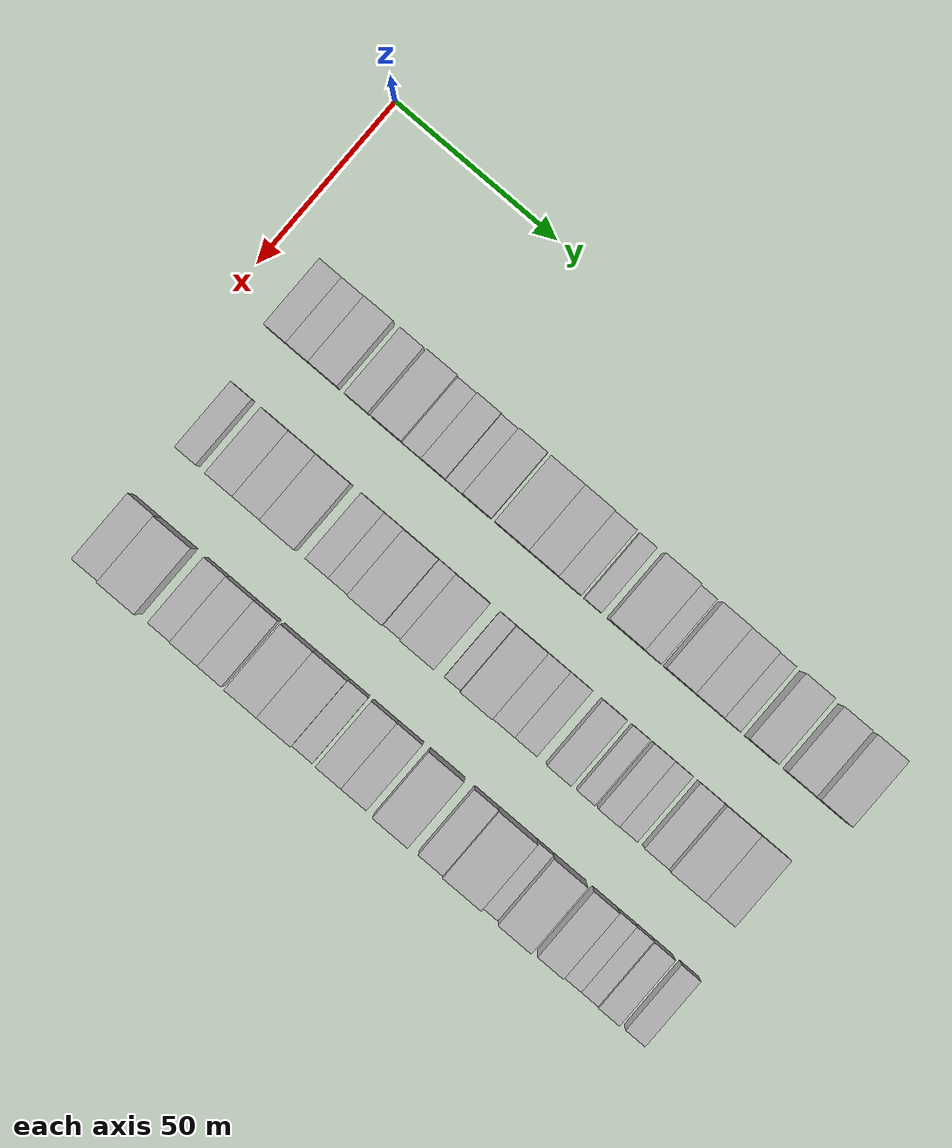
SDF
<sdf version="1.6">
 <world name="default">
  <model name="building_42">
   <static>1</static>
   <pose>50.0000 14.8353 0 0.000000 0.000000 0.000000</pose>
   <link name="link">
    <pose>0 0 7.50 0 0 0</pose>
    <collision name="collision"><geometry><box><size>20.0000 6.7428 15.0000</size></box></geometry></collision>
    <visual name="visual">
     <cast_shadows>0</cast_shadows>
     <geometry><box><size>20.0000 6.7428 15.0000</size></box></geometry>
     <material>
      <script>
       <uri>model://HANNAS_wall/materials/scripts</uri>
       <uri>model://HANNAS_wall/materials/textures</uri>
       <name>vrc/HANNAS_wall</name>
      </script>
     </material>
    </visual>
   </link>
  </model>
  <model name="building_43">
   <static>1</static>
   <pose>50.0000 21.6763 0 0.000000 0.000000 0.000000</pose>
   <link name="link">
    <pose>0 0 7.50 0 0 0</pose>
    <collision name="collision"><geometry><box><size>20.0000 6.9393 15.0000</size></box></geometry></collision>
    <visual name="visual">
     <cast_shadows>0</cast_shadows>
     <geometry><box><size>20.0000 6.9393 15.0000</size></box></geometry>
     <material>
      <script>
       <uri>model://HANNAS_wall/materials/scripts</uri>
       <uri>model://HANNAS_wall/materials/textures</uri>
       <name>vrc/HANNAS_wall</name>
      </script>
     </material>
    </visual>
   </link>
  </model>
  <model name="building_44">
   <static>1</static>
   <pose>50.0000 29.5664 0 0.000000 0.000000 0.000000</pose>
   <link name="link">
    <pose>0 0 9.00 0 0 0</pose>
    <collision name="collision"><geometry><box><size>20.0000 8.8408 18.0000</size></box></geometry></collision>
    <visual name="visual">
     <cast_shadows>0</cast_shadows>
     <geometry><box><size>20.0000 8.8408 18.0000</size></box></geometry>
     <material>
      <script>
       <uri>model://HANNAS_wall/materials/scripts</uri>
       <uri>model://HANNAS_wall/materials/textures</uri>
       <name>vrc/HANNAS_wall</name>
      </script>
     </material>
    </visual>
   </link>
  </model>
  <model name="building_45">
   <static>1</static>
   <pose>50.0000 39.5850 0 0.000000 0.000000 0.000000</pose>
   <link name="link">
    <pose>0 0 7.50 0 0 0</pose>
    <collision name="collision"><geometry><box><size>20.0000 7.1965 15.0000</size></box></geometry></collision>
    <visual name="visual">
     <cast_shadows>0</cast_shadows>
     <geometry><box><size>20.0000 7.1965 15.0000</size></box></geometry>
     <material>
      <script>
       <uri>model://HANNAS_wall/materials/scripts</uri>
       <uri>model://HANNAS_wall/materials/textures</uri>
       <name>vrc/HANNAS_wall</name>
      </script>
     </material>
    </visual>
   </link>
  </model>
  <model name="building_46">
   <static>1</static>
   <pose>50.0000 48.8609 0 0.000000 0.000000 0.000000</pose>
   <link name="link">
    <pose>0 0 10.50 0 0 0</pose>
    <collision name="collision"><geometry><box><size>20.0000 9.3553 21.0000</size></box></geometry></collision>
    <visual name="visual">
     <cast_shadows>0</cast_shadows>
     <geometry><box><size>20.0000 9.3553 21.0000</size></box></geometry>
     <material>
      <script>
       <uri>model://HANNAS_wall/materials/scripts</uri>
       <uri>model://HANNAS_wall/materials/textures</uri>
       <name>vrc/HANNAS_wall</name>
      </script>
     </material>
    </visual>
   </link>
  </model>
  <model name="building_47">
   <static>1</static>
   <pose>50.0000 56.5176 0 0.000000 0.000000 0.000000</pose>
   <link name="link">
    <pose>0 0 6.00 0 0 0</pose>
    <collision name="collision"><geometry><box><size>20.0000 5.9580 12.0000</size></box></geometry></collision>
    <visual name="visual">
     <cast_shadows>0</cast_shadows>
     <geometry><box><size>20.0000 5.9580 12.0000</size></box></geometry>
     <material>
      <script>
       <uri>model://HANNAS_wall/materials/scripts</uri>
       <uri>model://HANNAS_wall/materials/textures</uri>
       <name>vrc/HANNAS_wall</name>
      </script>
     </material>
    </visual>
   </link>
  </model>
  <model name="building_48">
   <static>1</static>
   <pose>50.0000 63.1701 0 0.000000 0.000000 0.000000</pose>
   <link name="link">
    <pose>0 0 9.00 0 0 0</pose>
    <collision name="collision"><geometry><box><size>20.0000 7.3471 18.0000</size></box></geometry></collision>
    <visual name="visual">
     <cast_shadows>0</cast_shadows>
     <geometry><box><size>20.0000 7.3471 18.0000</size></box></geometry>
     <material>
      <script>
       <uri>model://HANNAS_wall/materials/scripts</uri>
       <uri>model://HANNAS_wall/materials/textures</uri>
       <name>vrc/HANNAS_wall</name>
      </script>
     </material>
    </visual>
   </link>
  </model>
  <model name="building_49">
   <static>1</static>
   <pose>50.0000 69.4991 0 0.000000 0.000000 0.000000</pose>
   <link name="link">
    <pose>0 0 6.00 0 0 0</pose>
    <collision name="collision"><geometry><box><size>20.0000 5.3110 12.0000</size></box></geometry></collision>
    <visual name="visual">
     <cast_shadows>0</cast_shadows>
     <geometry><box><size>20.0000 5.3110 12.0000</size></box></geometry>
     <material>
      <script>
       <uri>model://HANNAS_wall/materials/scripts</uri>
       <uri>model://HANNAS_wall/materials/textures</uri>
       <name>vrc/HANNAS_wall</name>
      </script>
     </material>
    </visual>
   </link>
  </model>
  <model name="building_50">
   <static>1</static>
   <pose>50.0000 76.5084 0 0.000000 0.000000 0.000000</pose>
   <link name="link">
    <pose>0 0 10.50 0 0 0</pose>
    <collision name="collision"><geometry><box><size>20.0000 8.7075 21.0000</size></box></geometry></collision>
    <visual name="visual">
     <cast_shadows>0</cast_shadows>
     <geometry><box><size>20.0000 8.7075 21.0000</size></box></geometry>
     <material>
      <script>
       <uri>model://HANNAS_wall/materials/scripts</uri>
       <uri>model://HANNAS_wall/materials/textures</uri>
       <name>vrc/HANNAS_wall</name>
      </script>
     </material>
    </visual>
   </link>
  </model>
  <model name="building_51">
   <static>1</static>
   <pose>50.0000 87.0687 0 0.000000 0.000000 0.000000</pose>
   <link name="link">
    <pose>0 0 10.50 0 0 0</pose>
    <collision name="collision"><geometry><box><size>20.0000 10.4131 21.0000</size></box></geometry></collision>
    <visual name="visual">
     <cast_shadows>0</cast_shadows>
     <geometry><box><size>20.0000 10.4131 21.0000</size></box></geometry>
     <material>
      <script>
       <uri>model://HANNAS_wall/materials/scripts</uri>
       <uri>model://HANNAS_wall/materials/textures</uri>
       <name>vrc/HANNAS_wall</name>
      </script>
     </material>
    </visual>
   </link>
  </model>
  <model name="building_52">
   <static>1</static>
   <pose>50.0000 96.8243 0 0.000000 0.000000 0.000000</pose>
   <link name="link">
    <pose>0 0 10.50 0 0 0</pose>
    <collision name="collision"><geometry><box><size>20.0000 9.0983 21.0000</size></box></geometry></collision>
    <visual name="visual">
     <cast_shadows>0</cast_shadows>
     <geometry><box><size>20.0000 9.0983 21.0000</size></box></geometry>
     <material>
      <script>
       <uri>model://HANNAS_wall/materials/scripts</uri>
       <uri>model://HANNAS_wall/materials/textures</uri>
       <name>vrc/HANNAS_wall</name>
      </script>
     </material>
    </visual>
   </link>
  </model>
  <model name="building_53">
   <static>1</static>
   <pose>50.0000 104.8211 0 0.000000 0.000000 0.000000</pose>
   <link name="link">
    <pose>0 0 7.50 0 0 0</pose>
    <collision name="collision"><geometry><box><size>20.0000 6.8952 15.0000</size></box></geometry></collision>
    <visual name="visual">
     <cast_shadows>0</cast_shadows>
     <geometry><box><size>20.0000 6.8952 15.0000</size></box></geometry>
     <material>
      <script>
       <uri>model://HANNAS_wall/materials/scripts</uri>
       <uri>model://HANNAS_wall/materials/textures</uri>
       <name>vrc/HANNAS_wall</name>
      </script>
     </material>
    </visual>
   </link>
  </model>
  <model name="building_54">
   <static>1</static>
   <pose>50.0000 111.8903 0 0.000000 0.000000 0.000000</pose>
   <link name="link">
    <pose>0 0 6.00 0 0 0</pose>
    <collision name="collision"><geometry><box><size>20.0000 5.2433 12.0000</size></box></geometry></collision>
    <visual name="visual">
     <cast_shadows>0</cast_shadows>
     <geometry><box><size>20.0000 5.2433 12.0000</size></box></geometry>
     <material>
      <script>
       <uri>model://HANNAS_wall/materials/scripts</uri>
       <uri>model://HANNAS_wall/materials/textures</uri>
       <name>vrc/HANNAS_wall</name>
      </script>
     </material>
    </visual>
   </link>
  </model>
  <model name="building_55">
   <static>1</static>
   <pose>50.0000 121.9380 0 0.000000 0.000000 0.000000</pose>
   <link name="link">
    <pose>0 0 12.00 0 0 0</pose>
    <collision name="collision"><geometry><box><size>20.0000 10.8521 24.0000</size></box></geometry></collision>
    <visual name="visual">
     <cast_shadows>0</cast_shadows>
     <geometry><box><size>20.0000 10.8521 24.0000</size></box></geometry>
     <material>
      <script>
       <uri>model://HANNAS_wall/materials/scripts</uri>
       <uri>model://HANNAS_wall/materials/textures</uri>
       <name>vrc/HANNAS_wall</name>
      </script>
     </material>
    </visual>
   </link>
  </model>
  <model name="building_56">
   <static>1</static>
   <pose>50.0000 130.1348 0 0.000000 0.000000 0.000000</pose>
   <link name="link">
    <pose>0 0 6.00 0 0 0</pose>
    <collision name="collision"><geometry><box><size>20.0000 5.5414 12.0000</size></box></geometry></collision>
    <visual name="visual">
     <cast_shadows>0</cast_shadows>
     <geometry><box><size>20.0000 5.5414 12.0000</size></box></geometry>
     <material>
      <script>
       <uri>model://HANNAS_wall/materials/scripts</uri>
       <uri>model://HANNAS_wall/materials/textures</uri>
       <name>vrc/HANNAS_wall</name>
      </script>
     </material>
    </visual>
   </link>
  </model>
  <model name="building_57">
   <static>1</static>
   <pose>50.0000 138.3855 0 0.000000 0.000000 0.000000</pose>
   <link name="link">
    <pose>0 0 10.50 0 0 0</pose>
    <collision name="collision"><geometry><box><size>20.0000 8.9601 21.0000</size></box></geometry></collision>
    <visual name="visual">
     <cast_shadows>0</cast_shadows>
     <geometry><box><size>20.0000 8.9601 21.0000</size></box></geometry>
     <material>
      <script>
       <uri>model://HANNAS_wall/materials/scripts</uri>
       <uri>model://HANNAS_wall/materials/textures</uri>
       <name>vrc/HANNAS_wall</name>
      </script>
     </material>
    </visual>
   </link>
  </model>
  <model name="building_58">
   <static>1</static>
   <pose>50.0000 147.2667 0 0.000000 0.000000 0.000000</pose>
   <link name="link">
    <pose>0 0 9.00 0 0 0</pose>
    <collision name="collision"><geometry><box><size>20.0000 8.8022 18.0000</size></box></geometry></collision>
    <visual name="visual">
     <cast_shadows>0</cast_shadows>
     <geometry><box><size>20.0000 8.8022 18.0000</size></box></geometry>
     <material>
      <script>
       <uri>model://HANNAS_wall/materials/scripts</uri>
       <uri>model://HANNAS_wall/materials/textures</uri>
       <name>vrc/HANNAS_wall</name>
      </script>
     </material>
    </visual>
   </link>
  </model>
  <model name="building_59">
   <static>1</static>
   <pose>50.0000 154.3495 0 0.000000 0.000000 0.000000</pose>
   <link name="link">
    <pose>0 0 6.00 0 0 0</pose>
    <collision name="collision"><geometry><box><size>20.0000 5.3634 12.0000</size></box></geometry></collision>
    <visual name="visual">
     <cast_shadows>0</cast_shadows>
     <geometry><box><size>20.0000 5.3634 12.0000</size></box></geometry>
     <material>
      <script>
       <uri>model://HANNAS_wall/materials/scripts</uri>
       <uri>model://HANNAS_wall/materials/textures</uri>
       <name>vrc/HANNAS_wall</name>
      </script>
     </material>
    </visual>
   </link>
  </model>
  <model name="building_60">
   <static>1</static>
   <pose>50.0000 163.4841 0 0.000000 0.000000 0.000000</pose>
   <link name="link">
    <pose>0 0 10.50 0 0 0</pose>
    <collision name="collision"><geometry><box><size>20.0000 8.9057 21.0000</size></box></geometry></collision>
    <visual name="visual">
     <cast_shadows>0</cast_shadows>
     <geometry><box><size>20.0000 8.9057 21.0000</size></box></geometry>
     <material>
      <script>
       <uri>model://HANNAS_wall/materials/scripts</uri>
       <uri>model://HANNAS_wall/materials/textures</uri>
       <name>vrc/HANNAS_wall</name>
      </script>
     </material>
    </visual>
   </link>
  </model>
  <model name="building_61">
   <static>1</static>
   <pose>50.0000 175.3051 0 0.000000 0.000000 0.000000</pose>
   <link name="link">
    <pose>0 0 9.00 0 0 0</pose>
    <collision name="collision"><geometry><box><size>20.0000 8.7363 18.0000</size></box></geometry></collision>
    <visual name="visual">
     <cast_shadows>0</cast_shadows>
     <geometry><box><size>20.0000 8.7363 18.0000</size></box></geometry>
     <material>
      <script>
       <uri>model://HANNAS_wall/materials/scripts</uri>
       <uri>model://HANNAS_wall/materials/textures</uri>
       <name>vrc/HANNAS_wall</name>
      </script>
     </material>
    </visual>
   </link>
  </model>
  <model name="building_62">
   <static>1</static>
   <pose>50.0000 185.4609 0 0.000000 0.000000 0.000000</pose>
   <link name="link">
    <pose>0 0 10.50 0 0 0</pose>
    <collision name="collision"><geometry><box><size>20.0000 9.5754 21.0000</size></box></geometry></collision>
    <visual name="visual">
     <cast_shadows>0</cast_shadows>
     <geometry><box><size>20.0000 9.5754 21.0000</size></box></geometry>
     <material>
      <script>
       <uri>model://HANNAS_wall/materials/scripts</uri>
       <uri>model://HANNAS_wall/materials/textures</uri>
       <name>vrc/HANNAS_wall</name>
      </script>
     </material>
    </visual>
   </link>
  </model>
  <model name="building_122">
   <static>1</static>
   <pose>85.0000 17.5130 0 0.000000 0.000000 0.000000</pose>
   <link name="link">
    <pose>0 0 7.50 0 0 0</pose>
    <collision name="collision"><geometry><box><size>20.0000 6.4520 15.0000</size></box></geometry></collision>
    <visual name="visual">
     <cast_shadows>0</cast_shadows>
     <geometry><box><size>20.0000 6.4520 15.0000</size></box></geometry>
     <material>
      <script>
       <uri>model://HANNAS_wall/materials/scripts</uri>
       <uri>model://HANNAS_wall/materials/textures</uri>
       <name>vrc/HANNAS_wall</name>
      </script>
     </material>
    </visual>
   </link>
  </model>
  <model name="building_123">
   <static>1</static>
   <pose>85.0000 27.9033 0 0.000000 0.000000 0.000000</pose>
   <link name="link">
    <pose>0 0 9.00 0 0 0</pose>
    <collision name="collision"><geometry><box><size>20.0000 8.3287 18.0000</size></box></geometry></collision>
    <visual name="visual">
     <cast_shadows>0</cast_shadows>
     <geometry><box><size>20.0000 8.3287 18.0000</size></box></geometry>
     <material>
      <script>
       <uri>model://HANNAS_wall/materials/scripts</uri>
       <uri>model://HANNAS_wall/materials/textures</uri>
       <name>vrc/HANNAS_wall</name>
      </script>
     </material>
    </visual>
   </link>
  </model>
  <model name="building_124">
   <static>1</static>
   <pose>85.0000 36.3049 0 0.000000 0.000000 0.000000</pose>
   <link name="link">
    <pose>0 0 9.00 0 0 0</pose>
    <collision name="collision"><geometry><box><size>20.0000 8.4744 18.0000</size></box></geometry></collision>
    <visual name="visual">
     <cast_shadows>0</cast_shadows>
     <geometry><box><size>20.0000 8.4744 18.0000</size></box></geometry>
     <material>
      <script>
       <uri>model://HANNAS_wall/materials/scripts</uri>
       <uri>model://HANNAS_wall/materials/textures</uri>
       <name>vrc/HANNAS_wall</name>
      </script>
     </material>
    </visual>
   </link>
  </model>
  <model name="building_125">
   <static>1</static>
   <pose>85.0000 45.7857 0 0.000000 0.000000 0.000000</pose>
   <link name="link">
    <pose>0 0 10.50 0 0 0</pose>
    <collision name="collision"><geometry><box><size>20.0000 10.4872 21.0000</size></box></geometry></collision>
    <visual name="visual">
     <cast_shadows>0</cast_shadows>
     <geometry><box><size>20.0000 10.4872 21.0000</size></box></geometry>
     <material>
      <script>
       <uri>model://HANNAS_wall/materials/scripts</uri>
       <uri>model://HANNAS_wall/materials/textures</uri>
       <name>vrc/HANNAS_wall</name>
      </script>
     </material>
    </visual>
   </link>
  </model>
  <model name="building_126">
   <static>1</static>
   <pose>85.0000 57.5742 0 0.000000 0.000000 0.000000</pose>
   <link name="link">
    <pose>0 0 7.50 0 0 0</pose>
    <collision name="collision"><geometry><box><size>20.0000 7.0897 15.0000</size></box></geometry></collision>
    <visual name="visual">
     <cast_shadows>0</cast_shadows>
     <geometry><box><size>20.0000 7.0897 15.0000</size></box></geometry>
     <material>
      <script>
       <uri>model://HANNAS_wall/materials/scripts</uri>
       <uri>model://HANNAS_wall/materials/textures</uri>
       <name>vrc/HANNAS_wall</name>
      </script>
     </material>
    </visual>
   </link>
  </model>
  <model name="building_127">
   <static>1</static>
   <pose>85.0000 64.1379 0 0.000000 0.000000 0.000000</pose>
   <link name="link">
    <pose>0 0 7.50 0 0 0</pose>
    <collision name="collision"><geometry><box><size>20.0000 6.0377 15.0000</size></box></geometry></collision>
    <visual name="visual">
     <cast_shadows>0</cast_shadows>
     <geometry><box><size>20.0000 6.0377 15.0000</size></box></geometry>
     <material>
      <script>
       <uri>model://HANNAS_wall/materials/scripts</uri>
       <uri>model://HANNAS_wall/materials/textures</uri>
       <name>vrc/HANNAS_wall</name>
      </script>
     </material>
    </visual>
   </link>
  </model>
  <model name="building_128">
   <static>1</static>
   <pose>85.0000 72.4578 0 0.000000 0.000000 0.000000</pose>
   <link name="link">
    <pose>0 0 12.00 0 0 0</pose>
    <collision name="collision"><geometry><box><size>20.0000 10.6020 24.0000</size></box></geometry></collision>
    <visual name="visual">
     <cast_shadows>0</cast_shadows>
     <geometry><box><size>20.0000 10.6020 24.0000</size></box></geometry>
     <material>
      <script>
       <uri>model://HANNAS_wall/materials/scripts</uri>
       <uri>model://HANNAS_wall/materials/textures</uri>
       <name>vrc/HANNAS_wall</name>
      </script>
     </material>
    </visual>
   </link>
  </model>
  <model name="building_129">
   <static>1</static>
   <pose>85.0000 80.4064 0 0.000000 0.000000 0.000000</pose>
   <link name="link">
    <pose>0 0 6.00 0 0 0</pose>
    <collision name="collision"><geometry><box><size>20.0000 5.2952 12.0000</size></box></geometry></collision>
    <visual name="visual">
     <cast_shadows>0</cast_shadows>
     <geometry><box><size>20.0000 5.2952 12.0000</size></box></geometry>
     <material>
      <script>
       <uri>model://HANNAS_wall/materials/scripts</uri>
       <uri>model://HANNAS_wall/materials/textures</uri>
       <name>vrc/HANNAS_wall</name>
      </script>
     </material>
    </visual>
   </link>
  </model>
  <model name="building_130">
   <static>1</static>
   <pose>85.0000 88.2303 0 0.000000 0.000000 0.000000</pose>
   <link name="link">
    <pose>0 0 12.00 0 0 0</pose>
    <collision name="collision"><geometry><box><size>20.0000 10.3525 24.0000</size></box></geometry></collision>
    <visual name="visual">
     <cast_shadows>0</cast_shadows>
     <geometry><box><size>20.0000 10.3525 24.0000</size></box></geometry>
     <material>
      <script>
       <uri>model://HANNAS_wall/materials/scripts</uri>
       <uri>model://HANNAS_wall/materials/textures</uri>
       <name>vrc/HANNAS_wall</name>
      </script>
     </material>
    </visual>
   </link>
  </model>
  <model name="building_131">
   <static>1</static>
   <pose>85.0000 98.8623 0 0.000000 0.000000 0.000000</pose>
   <link name="link">
    <pose>0 0 6.00 0 0 0</pose>
    <collision name="collision"><geometry><box><size>20.0000 4.9117 12.0000</size></box></geometry></collision>
    <visual name="visual">
     <cast_shadows>0</cast_shadows>
     <geometry><box><size>20.0000 4.9117 12.0000</size></box></geometry>
     <material>
      <script>
       <uri>model://HANNAS_wall/materials/scripts</uri>
       <uri>model://HANNAS_wall/materials/textures</uri>
       <name>vrc/HANNAS_wall</name>
      </script>
     </material>
    </visual>
   </link>
  </model>
  <model name="building_132">
   <static>1</static>
   <pose>85.0000 106.1662 0 0.000000 0.000000 0.000000</pose>
   <link name="link">
    <pose>0 0 12.00 0 0 0</pose>
    <collision name="collision"><geometry><box><size>20.0000 9.6960 24.0000</size></box></geometry></collision>
    <visual name="visual">
     <cast_shadows>0</cast_shadows>
     <geometry><box><size>20.0000 9.6960 24.0000</size></box></geometry>
     <material>
      <script>
       <uri>model://HANNAS_wall/materials/scripts</uri>
       <uri>model://HANNAS_wall/materials/textures</uri>
       <name>vrc/HANNAS_wall</name>
      </script>
     </material>
    </visual>
   </link>
  </model>
  <model name="building_133">
   <static>1</static>
   <pose>85.0000 114.4758 0 0.000000 0.000000 0.000000</pose>
   <link name="link">
    <pose>0 0 7.50 0 0 0</pose>
    <collision name="collision"><geometry><box><size>20.0000 6.9232 15.0000</size></box></geometry></collision>
    <visual name="visual">
     <cast_shadows>0</cast_shadows>
     <geometry><box><size>20.0000 6.9232 15.0000</size></box></geometry>
     <material>
      <script>
       <uri>model://HANNAS_wall/materials/scripts</uri>
       <uri>model://HANNAS_wall/materials/textures</uri>
       <name>vrc/HANNAS_wall</name>
      </script>
     </material>
    </visual>
   </link>
  </model>
  <model name="building_134">
   <static>1</static>
   <pose>85.0000 121.2999 0 0.000000 0.000000 0.000000</pose>
   <link name="link">
    <pose>0 0 7.50 0 0 0</pose>
    <collision name="collision"><geometry><box><size>20.0000 6.7249 15.0000</size></box></geometry></collision>
    <visual name="visual">
     <cast_shadows>0</cast_shadows>
     <geometry><box><size>20.0000 6.7249 15.0000</size></box></geometry>
     <material>
      <script>
       <uri>model://HANNAS_wall/materials/scripts</uri>
       <uri>model://HANNAS_wall/materials/textures</uri>
       <name>vrc/HANNAS_wall</name>
      </script>
     </material>
    </visual>
   </link>
  </model>
  <model name="building_135">
   <static>1</static>
   <pose>85.0000 131.3365 0 0.000000 0.000000 0.000000</pose>
   <link name="link">
    <pose>0 0 9.00 0 0 0</pose>
    <collision name="collision"><geometry><box><size>20.0000 7.3485 18.0000</size></box></geometry></collision>
    <visual name="visual">
     <cast_shadows>0</cast_shadows>
     <geometry><box><size>20.0000 7.3485 18.0000</size></box></geometry>
     <material>
      <script>
       <uri>model://HANNAS_wall/materials/scripts</uri>
       <uri>model://HANNAS_wall/materials/textures</uri>
       <name>vrc/HANNAS_wall</name>
      </script>
     </material>
    </visual>
   </link>
  </model>
  <model name="building_136">
   <static>1</static>
   <pose>85.0000 139.6968 0 0.000000 0.000000 0.000000</pose>
   <link name="link">
    <pose>0 0 6.00 0 0 0</pose>
    <collision name="collision"><geometry><box><size>20.0000 5.3721 12.0000</size></box></geometry></collision>
    <visual name="visual">
     <cast_shadows>0</cast_shadows>
     <geometry><box><size>20.0000 5.3721 12.0000</size></box></geometry>
     <material>
      <script>
       <uri>model://HANNAS_wall/materials/scripts</uri>
       <uri>model://HANNAS_wall/materials/textures</uri>
       <name>vrc/HANNAS_wall</name>
      </script>
     </material>
    </visual>
   </link>
  </model>
  <model name="building_137">
   <static>1</static>
   <pose>85.0000 146.6025 0 0.000000 0.000000 0.000000</pose>
   <link name="link">
    <pose>0 0 7.50 0 0 0</pose>
    <collision name="collision"><geometry><box><size>20.0000 6.4392 15.0000</size></box></geometry></collision>
    <visual name="visual">
     <cast_shadows>0</cast_shadows>
     <geometry><box><size>20.0000 6.4392 15.0000</size></box></geometry>
     <material>
      <script>
       <uri>model://HANNAS_wall/materials/scripts</uri>
       <uri>model://HANNAS_wall/materials/textures</uri>
       <name>vrc/HANNAS_wall</name>
      </script>
     </material>
    </visual>
   </link>
  </model>
  <model name="building_138">
   <static>1</static>
   <pose>85.0000 152.6341 0 0.000000 0.000000 0.000000</pose>
   <link name="link">
    <pose>0 0 6.00 0 0 0</pose>
    <collision name="collision"><geometry><box><size>20.0000 5.6239 12.0000</size></box></geometry></collision>
    <visual name="visual">
     <cast_shadows>0</cast_shadows>
     <geometry><box><size>20.0000 5.6239 12.0000</size></box></geometry>
     <material>
      <script>
       <uri>model://HANNAS_wall/materials/scripts</uri>
       <uri>model://HANNAS_wall/materials/textures</uri>
       <name>vrc/HANNAS_wall</name>
      </script>
     </material>
    </visual>
   </link>
  </model>
  <model name="building_139">
   <static>1</static>
   <pose>85.0000 161.1597 0 0.000000 0.000000 0.000000</pose>
   <link name="link">
    <pose>0 0 7.50 0 0 0</pose>
    <collision name="collision"><geometry><box><size>20.0000 7.4273 15.0000</size></box></geometry></collision>
    <visual name="visual">
     <cast_shadows>0</cast_shadows>
     <geometry><box><size>20.0000 7.4273 15.0000</size></box></geometry>
     <material>
      <script>
       <uri>model://HANNAS_wall/materials/scripts</uri>
       <uri>model://HANNAS_wall/materials/textures</uri>
       <name>vrc/HANNAS_wall</name>
      </script>
     </material>
    </visual>
   </link>
  </model>
  <model name="building_140">
   <static>1</static>
   <pose>85.0000 170.1048 0 0.000000 0.000000 0.000000</pose>
   <link name="link">
    <pose>0 0 12.00 0 0 0</pose>
    <collision name="collision"><geometry><box><size>20.0000 10.4631 24.0000</size></box></geometry></collision>
    <visual name="visual">
     <cast_shadows>0</cast_shadows>
     <geometry><box><size>20.0000 10.4631 24.0000</size></box></geometry>
     <material>
      <script>
       <uri>model://HANNAS_wall/materials/scripts</uri>
       <uri>model://HANNAS_wall/materials/textures</uri>
       <name>vrc/HANNAS_wall</name>
      </script>
     </material>
    </visual>
   </link>
  </model>
  <model name="building_141">
   <static>1</static>
   <pose>85.0000 179.9588 0 0.000000 0.000000 0.000000</pose>
   <link name="link">
    <pose>0 0 10.50 0 0 0</pose>
    <collision name="collision"><geometry><box><size>20.0000 9.2449 21.0000</size></box></geometry></collision>
    <visual name="visual">
     <cast_shadows>0</cast_shadows>
     <geometry><box><size>20.0000 9.2449 21.0000</size></box></geometry>
     <material>
      <script>
       <uri>model://HANNAS_wall/materials/scripts</uri>
       <uri>model://HANNAS_wall/materials/textures</uri>
       <name>vrc/HANNAS_wall</name>
      </script>
     </material>
    </visual>
   </link>
  </model>
  <model name="building_202">
   <static>1</static>
   <pose>120.0000 17.4264 0 0.000000 0.000000 0.000000</pose>
   <link name="link">
    <pose>0 0 9.00 0 0 0</pose>
    <collision name="collision"><geometry><box><size>20.0000 8.3726 18.0000</size></box></geometry></collision>
    <visual name="visual">
     <cast_shadows>0</cast_shadows>
     <geometry><box><size>20.0000 8.3726 18.0000</size></box></geometry>
     <material>
      <script>
       <uri>model://HANNAS_wall/materials/scripts</uri>
       <uri>model://HANNAS_wall/materials/textures</uri>
       <name>vrc/HANNAS_wall</name>
      </script>
     </material>
    </visual>
   </link>
  </model>
  <model name="building_203">
   <static>1</static>
   <pose>120.0000 27.2915 0 0.000000 0.000000 0.000000</pose>
   <link name="link">
    <pose>0 0 12.00 0 0 0</pose>
    <collision name="collision"><geometry><box><size>20.0000 11.3575 24.0000</size></box></geometry></collision>
    <visual name="visual">
     <cast_shadows>0</cast_shadows>
     <geometry><box><size>20.0000 11.3575 24.0000</size></box></geometry>
     <material>
      <script>
       <uri>model://HANNAS_wall/materials/scripts</uri>
       <uri>model://HANNAS_wall/materials/textures</uri>
       <name>vrc/HANNAS_wall</name>
      </script>
     </material>
    </visual>
   </link>
  </model>
  <model name="building_204">
   <static>1</static>
   <pose>120.0000 39.4447 0 0.000000 0.000000 0.000000</pose>
   <link name="link">
    <pose>0 0 7.50 0 0 0</pose>
    <collision name="collision"><geometry><box><size>20.0000 6.9490 15.0000</size></box></geometry></collision>
    <visual name="visual">
     <cast_shadows>0</cast_shadows>
     <geometry><box><size>20.0000 6.9490 15.0000</size></box></geometry>
     <material>
      <script>
       <uri>model://HANNAS_wall/materials/scripts</uri>
       <uri>model://HANNAS_wall/materials/textures</uri>
       <name>vrc/HANNAS_wall</name>
      </script>
     </material>
    </visual>
   </link>
  </model>
  <model name="building_205">
   <static>1</static>
   <pose>120.0000 47.1808 0 0.000000 0.000000 0.000000</pose>
   <link name="link">
    <pose>0 0 9.00 0 0 0</pose>
    <collision name="collision"><geometry><box><size>20.0000 8.5232 18.0000</size></box></geometry></collision>
    <visual name="visual">
     <cast_shadows>0</cast_shadows>
     <geometry><box><size>20.0000 8.5232 18.0000</size></box></geometry>
     <material>
      <script>
       <uri>model://HANNAS_wall/materials/scripts</uri>
       <uri>model://HANNAS_wall/materials/textures</uri>
       <name>vrc/HANNAS_wall</name>
      </script>
     </material>
    </visual>
   </link>
  </model>
  <model name="building_206">
   <static>1</static>
   <pose>120.0000 55.0970 0 0.000000 0.000000 0.000000</pose>
   <link name="link">
    <pose>0 0 9.00 0 0 0</pose>
    <collision name="collision"><geometry><box><size>20.0000 7.3091 18.0000</size></box></geometry></collision>
    <visual name="visual">
     <cast_shadows>0</cast_shadows>
     <geometry><box><size>20.0000 7.3091 18.0000</size></box></geometry>
     <material>
      <script>
       <uri>model://HANNAS_wall/materials/scripts</uri>
       <uri>model://HANNAS_wall/materials/textures</uri>
       <name>vrc/HANNAS_wall</name>
      </script>
     </material>
    </visual>
   </link>
  </model>
  <model name="building_207">
   <static>1</static>
   <pose>120.0000 64.6511 0 0.000000 0.000000 0.000000</pose>
   <link name="link">
    <pose>0 0 10.50 0 0 0</pose>
    <collision name="collision"><geometry><box><size>20.0000 9.7993 21.0000</size></box></geometry></collision>
    <visual name="visual">
     <cast_shadows>0</cast_shadows>
     <geometry><box><size>20.0000 9.7993 21.0000</size></box></geometry>
     <material>
      <script>
       <uri>model://HANNAS_wall/materials/scripts</uri>
       <uri>model://HANNAS_wall/materials/textures</uri>
       <name>vrc/HANNAS_wall</name>
      </script>
     </material>
    </visual>
   </link>
  </model>
  <model name="building_208">
   <static>1</static>
   <pose>120.0000 74.7412 0 0.000000 0.000000 0.000000</pose>
   <link name="link">
    <pose>0 0 10.50 0 0 0</pose>
    <collision name="collision"><geometry><box><size>20.0000 10.3809 21.0000</size></box></geometry></collision>
    <visual name="visual">
     <cast_shadows>0</cast_shadows>
     <geometry><box><size>20.0000 10.3809 21.0000</size></box></geometry>
     <material>
      <script>
       <uri>model://HANNAS_wall/materials/scripts</uri>
       <uri>model://HANNAS_wall/materials/textures</uri>
       <name>vrc/HANNAS_wall</name>
      </script>
     </material>
    </visual>
   </link>
  </model>
  <model name="building_209">
   <static>1</static>
   <pose>120.0000 83.0633 0 0.000000 0.000000 0.000000</pose>
   <link name="link">
    <pose>0 0 7.50 0 0 0</pose>
    <collision name="collision"><geometry><box><size>20.0000 6.2634 15.0000</size></box></geometry></collision>
    <visual name="visual">
     <cast_shadows>0</cast_shadows>
     <geometry><box><size>20.0000 6.2634 15.0000</size></box></geometry>
     <material>
      <script>
       <uri>model://HANNAS_wall/materials/scripts</uri>
       <uri>model://HANNAS_wall/materials/textures</uri>
       <name>vrc/HANNAS_wall</name>
      </script>
     </material>
    </visual>
   </link>
  </model>
  <model name="building_210">
   <static>1</static>
   <pose>120.0000 91.0958 0 0.000000 0.000000 0.000000</pose>
   <link name="link">
    <pose>0 0 9.00 0 0 0</pose>
    <collision name="collision"><geometry><box><size>20.0000 7.8017 18.0000</size></box></geometry></collision>
    <visual name="visual">
     <cast_shadows>0</cast_shadows>
     <geometry><box><size>20.0000 7.8017 18.0000</size></box></geometry>
     <material>
      <script>
       <uri>model://HANNAS_wall/materials/scripts</uri>
       <uri>model://HANNAS_wall/materials/textures</uri>
       <name>vrc/HANNAS_wall</name>
      </script>
     </material>
    </visual>
   </link>
  </model>
  <model name="building_211">
   <static>1</static>
   <pose>120.0000 98.8750 0 0.000000 0.000000 0.000000</pose>
   <link name="link">
    <pose>0 0 9.00 0 0 0</pose>
    <collision name="collision"><geometry><box><size>20.0000 7.7567 18.0000</size></box></geometry></collision>
    <visual name="visual">
     <cast_shadows>0</cast_shadows>
     <geometry><box><size>20.0000 7.7567 18.0000</size></box></geometry>
     <material>
      <script>
       <uri>model://HANNAS_wall/materials/scripts</uri>
       <uri>model://HANNAS_wall/materials/textures</uri>
       <name>vrc/HANNAS_wall</name>
      </script>
     </material>
    </visual>
   </link>
  </model>
  <model name="building_212">
   <static>1</static>
   <pose>120.0000 110.1004 0 0.000000 0.000000 0.000000</pose>
   <link name="link">
    <pose>0 0 12.00 0 0 0</pose>
    <collision name="collision"><geometry><box><size>20.0000 10.6940 24.0000</size></box></geometry></collision>
    <visual name="visual">
     <cast_shadows>0</cast_shadows>
     <geometry><box><size>20.0000 10.6940 24.0000</size></box></geometry>
     <material>
      <script>
       <uri>model://HANNAS_wall/materials/scripts</uri>
       <uri>model://HANNAS_wall/materials/textures</uri>
       <name>vrc/HANNAS_wall</name>
      </script>
     </material>
    </visual>
   </link>
  </model>
  <model name="building_213">
   <static>1</static>
   <pose>120.0000 122.1936 0 0.000000 0.000000 0.000000</pose>
   <link name="link">
    <pose>0 0 9.00 0 0 0</pose>
    <collision name="collision"><geometry><box><size>20.0000 7.4925 18.0000</size></box></geometry></collision>
    <visual name="visual">
     <cast_shadows>0</cast_shadows>
     <geometry><box><size>20.0000 7.4925 18.0000</size></box></geometry>
     <material>
      <script>
       <uri>model://HANNAS_wall/materials/scripts</uri>
       <uri>model://HANNAS_wall/materials/textures</uri>
       <name>vrc/HANNAS_wall</name>
      </script>
     </material>
    </visual>
   </link>
  </model>
  <model name="building_214">
   <static>1</static>
   <pose>120.0000 131.7925 0 0.000000 0.000000 0.000000</pose>
   <link name="link">
    <pose>0 0 12.00 0 0 0</pose>
    <collision name="collision"><geometry><box><size>20.0000 11.7053 24.0000</size></box></geometry></collision>
    <visual name="visual">
     <cast_shadows>0</cast_shadows>
     <geometry><box><size>20.0000 11.7053 24.0000</size></box></geometry>
     <material>
      <script>
       <uri>model://HANNAS_wall/materials/scripts</uri>
       <uri>model://HANNAS_wall/materials/textures</uri>
       <name>vrc/HANNAS_wall</name>
      </script>
     </material>
    </visual>
   </link>
  </model>
  <model name="building_215">
   <static>1</static>
   <pose>120.0000 140.1438 0 0.000000 0.000000 0.000000</pose>
   <link name="link">
    <pose>0 0 6.00 0 0 0</pose>
    <collision name="collision"><geometry><box><size>20.0000 4.9973 12.0000</size></box></geometry></collision>
    <visual name="visual">
     <cast_shadows>0</cast_shadows>
     <geometry><box><size>20.0000 4.9973 12.0000</size></box></geometry>
     <material>
      <script>
       <uri>model://HANNAS_wall/materials/scripts</uri>
       <uri>model://HANNAS_wall/materials/textures</uri>
       <name>vrc/HANNAS_wall</name>
      </script>
     </material>
    </visual>
   </link>
  </model>
  <model name="building_216">
   <static>1</static>
   <pose>120.0000 147.6975 0 0.000000 0.000000 0.000000</pose>
   <link name="link">
    <pose>0 0 12.00 0 0 0</pose>
    <collision name="collision"><geometry><box><size>20.0000 10.1102 24.0000</size></box></geometry></collision>
    <visual name="visual">
     <cast_shadows>0</cast_shadows>
     <geometry><box><size>20.0000 10.1102 24.0000</size></box></geometry>
     <material>
      <script>
       <uri>model://HANNAS_wall/materials/scripts</uri>
       <uri>model://HANNAS_wall/materials/textures</uri>
       <name>vrc/HANNAS_wall</name>
      </script>
     </material>
    </visual>
   </link>
  </model>
  <model name="building_217">
   <static>1</static>
   <pose>120.0000 158.6886 0 0.000000 0.000000 0.000000</pose>
   <link name="link">
    <pose>0 0 9.00 0 0 0</pose>
    <collision name="collision"><geometry><box><size>20.0000 7.8719 18.0000</size></box></geometry></collision>
    <visual name="visual">
     <cast_shadows>0</cast_shadows>
     <geometry><box><size>20.0000 7.8719 18.0000</size></box></geometry>
     <material>
      <script>
       <uri>model://HANNAS_wall/materials/scripts</uri>
       <uri>model://HANNAS_wall/materials/textures</uri>
       <name>vrc/HANNAS_wall</name>
      </script>
     </material>
    </visual>
   </link>
  </model>
  <model name="building_218">
   <static>1</static>
   <pose>120.0000 165.4037 0 0.000000 0.000000 0.000000</pose>
   <link name="link">
    <pose>0 0 6.00 0 0 0</pose>
    <collision name="collision"><geometry><box><size>20.0000 5.5583 12.0000</size></box></geometry></collision>
    <visual name="visual">
     <cast_shadows>0</cast_shadows>
     <geometry><box><size>20.0000 5.5583 12.0000</size></box></geometry>
     <material>
      <script>
       <uri>model://HANNAS_wall/materials/scripts</uri>
       <uri>model://HANNAS_wall/materials/textures</uri>
       <name>vrc/HANNAS_wall</name>
      </script>
     </material>
    </visual>
   </link>
  </model>
  <model name="building_219">
   <static>1</static>
   <pose>120.0000 170.7517 0 0.000000 0.000000 0.000000</pose>
   <link name="link">
    <pose>0 0 6.00 0 0 0</pose>
    <collision name="collision"><geometry><box><size>20.0000 5.1376 12.0000</size></box></geometry></collision>
    <visual name="visual">
     <cast_shadows>0</cast_shadows>
     <geometry><box><size>20.0000 5.1376 12.0000</size></box></geometry>
     <material>
      <script>
       <uri>model://HANNAS_wall/materials/scripts</uri>
       <uri>model://HANNAS_wall/materials/textures</uri>
       <name>vrc/HANNAS_wall</name>
      </script>
     </material>
    </visual>
   </link>
  </model>
  <model name="building_220">
   <static>1</static>
   <pose>120.0000 176.5154 0 0.000000 0.000000 0.000000</pose>
   <link name="link">
    <pose>0 0 7.50 0 0 0</pose>
    <collision name="collision"><geometry><box><size>20.0000 6.3898 15.0000</size></box></geometry></collision>
    <visual name="visual">
     <cast_shadows>0</cast_shadows>
     <geometry><box><size>20.0000 6.3898 15.0000</size></box></geometry>
     <material>
      <script>
       <uri>model://HANNAS_wall/materials/scripts</uri>
       <uri>model://HANNAS_wall/materials/textures</uri>
       <name>vrc/HANNAS_wall</name>
      </script>
     </material>
    </visual>
   </link>
  </model>
  <model name="building_221">
   <static>1</static>
   <pose>120.0000 184.6888 0 0.000000 0.000000 0.000000</pose>
   <link name="link">
    <pose>0 0 6.00 0 0 0</pose>
    <collision name="collision"><geometry><box><size>20.0000 5.9571 12.0000</size></box></geometry></collision>
    <visual name="visual">
     <cast_shadows>0</cast_shadows>
     <geometry><box><size>20.0000 5.9571 12.0000</size></box></geometry>
     <material>
      <script>
       <uri>model://HANNAS_wall/materials/scripts</uri>
       <uri>model://HANNAS_wall/materials/textures</uri>
       <name>vrc/HANNAS_wall</name>
      </script>
     </material>
    </visual>
   </link>
  </model>
 </world>
</sdf>
